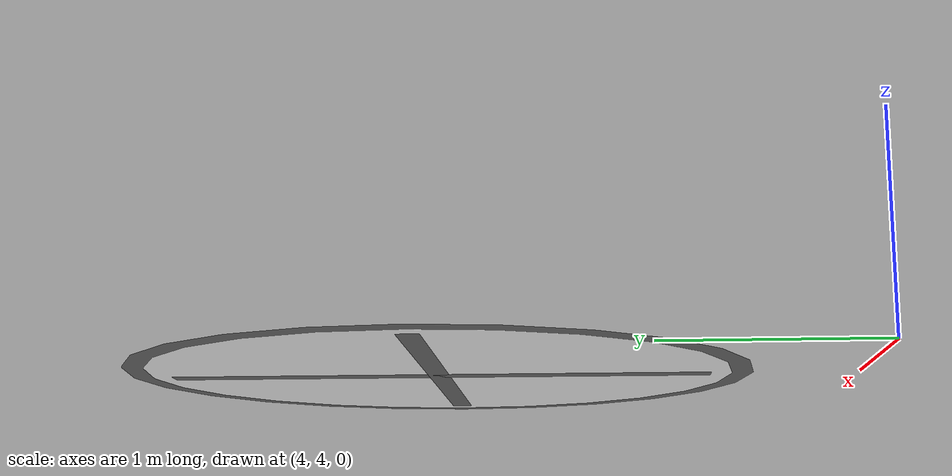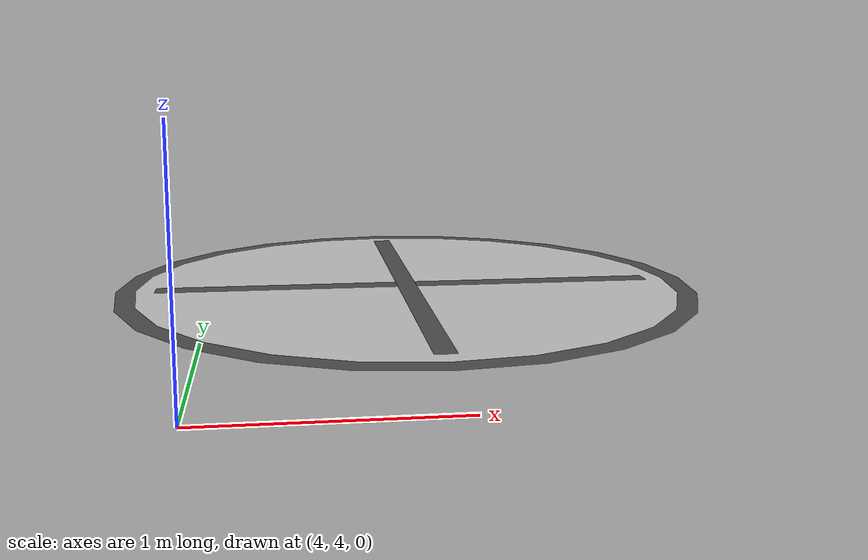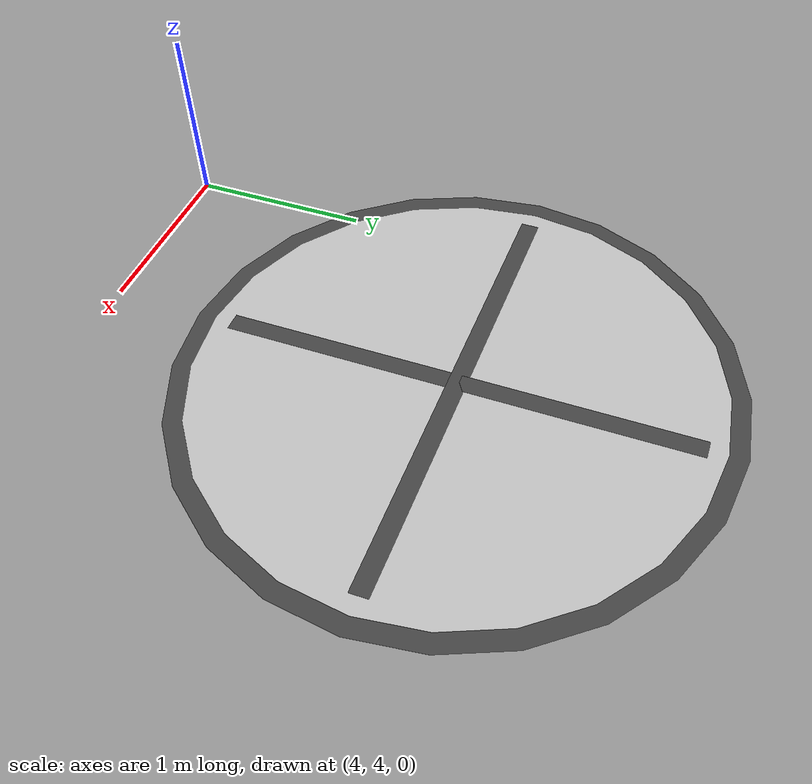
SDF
<?xml version='1.0'?>
<sdf version='1.3'>
  <model name="croc_parking_landing_marker">
	<static>true</static>
	<pose>5 6 0 0 0 0</pose>
    <link name='marker'>
	  <pose>0 0 0 0 0 0</pose>
      <collision name='collision'>
        <geometry>
          <cylinder>
            <radius>1.5</radius>
			<length>0</length>
          </cylinder>
        </geometry>
      </collision>

      <visual name='visual_black_circle'>
		<material>
			<ambient>0 0 0 0.5</ambient>
			<diffuse>0 0 0 0.5</diffuse>
			<specular>0 0 0 0.5</specular>
			<emissive>0 0 0 0.5</emissive>
		</material>
	    <geometry>
	      <cylinder>
            <radius>1.5</radius>
			<length>0.005</length>
          </cylinder>
        </geometry>
      </visual>

      <visual name='visual_white_circle'>
		<material>
			<ambient>1 1 1 0.5</ambient>
			<diffuse>1 1 1 0.5</diffuse>
			<specular>1 1 1 0.5</specular>
			<emissive>1 1 1 0.5</emissive>
		</material>
	    <geometry>
	      <cylinder>
            <radius>1.4</radius>
			<length>0.01</length>
          </cylinder>
        </geometry>
      </visual>

	  <visual name='visual_bar_1'>
		<material>
			<ambient>0 0 0 0.5</ambient>
			<diffuse>0 0 0 0.5</diffuse>
			<specular>0 0 0 0.5</specular>
			<emissive>0 0 0 0.5</emissive>
		</material>
	    <geometry>
	      <box>
			<size>0.1 2.6 0.015</size>
		  </box>
        </geometry>
      </visual>

	  <visual name='visual_bar_2'>
		<material>
			<ambient>0 0 0 0.5</ambient>
			<diffuse>0 0 0 0.5</diffuse>
			<specular>0 0 0 0.5</specular>
			<emissive>0 0 0 0.5</emissive>
		</material>
	    <geometry>
	      <box>
			<size>2.6 0.1 0.015</size>
		  </box>
        </geometry>
      </visual>

	</link>

  </model>
</sdf>
